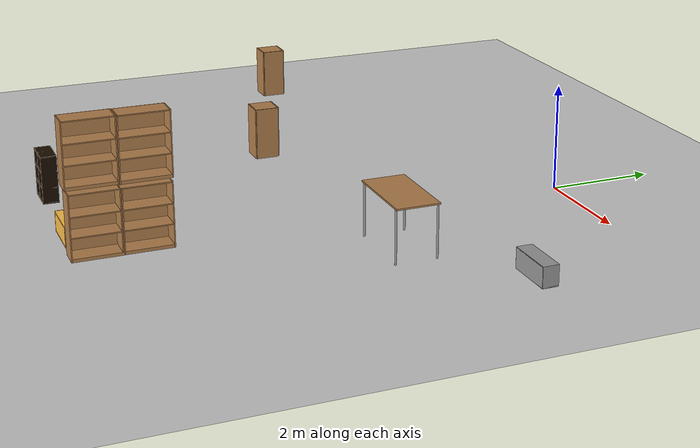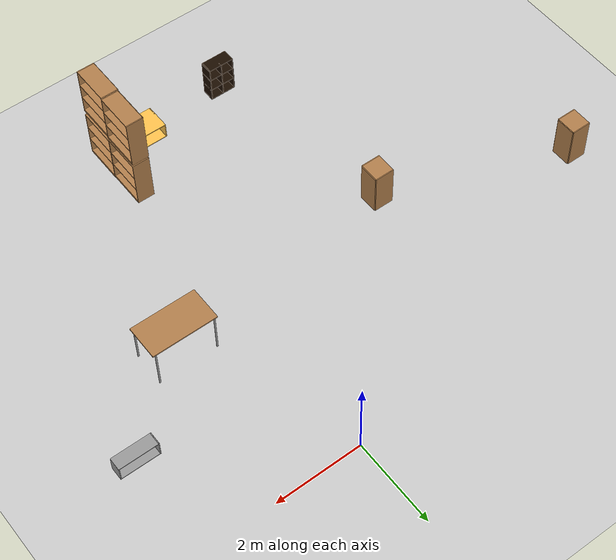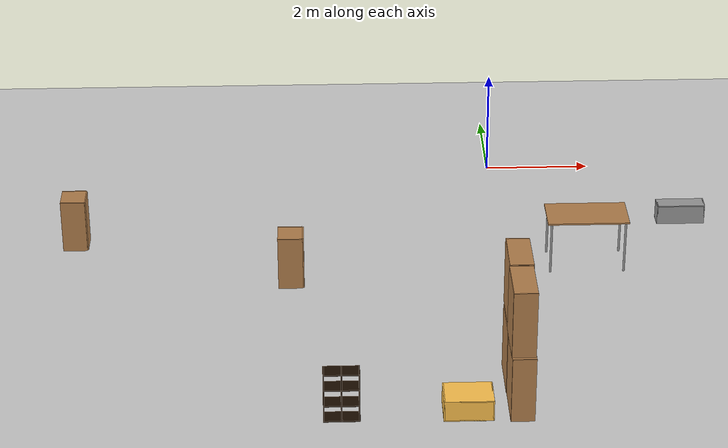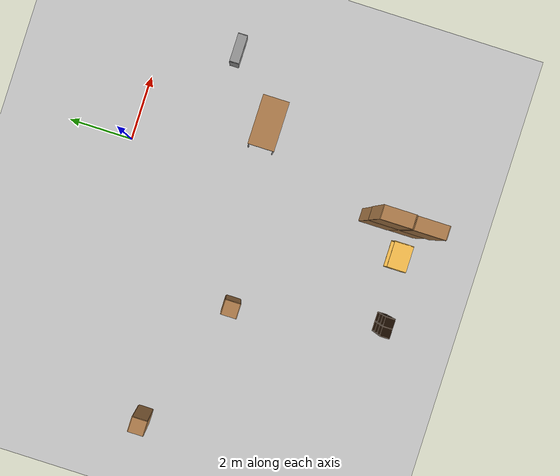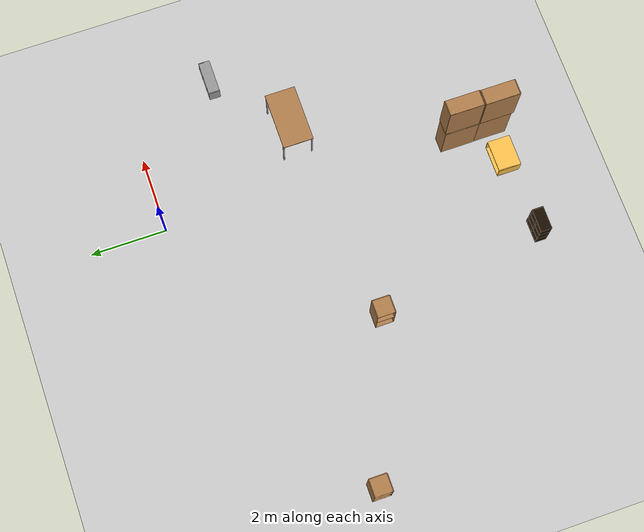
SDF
<sdf version="1.6">
 <world name="default">
  <model name="ground_plane">
   <static>1</static>
   <link name="link">
    <collision name="collision">
     <geometry><plane><normal>0 0 1</normal><size>100 100</size></plane></geometry>
     <surface>
      <contact><collide_bitmask>65535</collide_bitmask></contact>
      <friction><ode><mu>100</mu><mu2>50</mu2></ode></friction>
     </surface>
    </collision>
    <visual name="visual">
     <cast_shadows>0</cast_shadows>
     <geometry><plane><normal>0 0 1</normal><size>100 100</size></plane></geometry>
     <material>
      <script><uri>file://media/materials/scripts/gazebo.material</uri><name>Gazebo/Grey</name></script>
     </material>
    </visual>
   </link>
  </model>
  <model name="bookshelf_clone">
   <static>1</static>
   <link name="link">
    <inertial><mass>1</mass></inertial>
    <collision name="back">
     <pose>0 0.005 0.6 0 -0 0</pose>
     <geometry><box><size>0.9 0.01 1.2</size></box></geometry>
    </collision>
    <visual name="visual1">
     <pose>0 0.005 0.6 0 -0 0</pose>
     <geometry><box><size>0.9 0.01 1.2</size></box></geometry>
     <material>
      <script><uri>file://media/materials/scripts/gazebo.material</uri><name>Gazebo/Wood</name></script>
     </material>
    </visual>
    <collision name="left_side">
     <pose>0.45 -0.195 0.6 0 -0 0</pose>
     <geometry><box><size>0.02 0.4 1.2</size></box></geometry>
    </collision>
    <visual name="visual2">
     <pose>0.45 -0.195 0.6 0 -0 0</pose>
     <geometry><box><size>0.02 0.4 1.2</size></box></geometry>
     <material>
      <script><uri>file://media/materials/scripts/gazebo.material</uri><name>Gazebo/Wood</name></script>
     </material>
    </visual>
    <collision name="right_side">
     <pose>-0.45 -0.195 0.6 0 -0 0</pose>
     <geometry><box><size>0.02 0.4 1.2</size></box></geometry>
    </collision>
    <visual name="visual3">
     <pose>-0.45 -0.195 0.6 0 -0 0</pose>
     <geometry><box><size>0.02 0.4 1.2</size></box></geometry>
     <material>
      <script><uri>file://media/materials/scripts/gazebo.material</uri><name>Gazebo/Wood</name></script>
     </material>
    </visual>
    <collision name="bottom">
     <pose>0 -0.195 0.03 0 -0 0</pose>
     <geometry><box><size>0.88 0.4 0.06</size></box></geometry>
    </collision>
    <visual name="visual4">
     <pose>0 -0.195 0.03 0 -0 0</pose>
     <geometry><box><size>0.88 0.4 0.06</size></box></geometry>
     <material>
      <script><uri>file://media/materials/scripts/gazebo.material</uri><name>Gazebo/Wood</name></script>
     </material>
    </visual>
    <collision name="top">
     <pose>0 -0.195 1.19 0 -0 0</pose>
     <geometry><box><size>0.88 0.4 0.02</size></box></geometry>
    </collision>
    <visual name="visual5">
     <pose>0 -0.195 1.19 0 -0 0</pose>
     <geometry><box><size>0.88 0.4 0.02</size></box></geometry>
     <material>
      <script><uri>file://media/materials/scripts/gazebo.material</uri><name>Gazebo/Wood</name></script>
     </material>
    </visual>
    <collision name="low_shelf">
     <pose>0 -0.195 0.43 0 -0 0</pose>
     <geometry><box><size>0.88 0.4 0.02</size></box></geometry>
    </collision>
    <visual name="visual6">
     <pose>0 -0.195 0.43 0 -0 0</pose>
     <geometry><box><size>0.88 0.4 0.02</size></box></geometry>
     <material>
      <script><uri>file://media/materials/scripts/gazebo.material</uri><name>Gazebo/Wood</name></script>
     </material>
    </visual>
    <collision name="high_shelf">
     <pose>0 -0.195 0.8 0 -0 0</pose>
     <geometry><box><size>0.88 0.4 0.02</size></box></geometry>
    </collision>
    <visual name="visual7">
     <pose>0 -0.195 0.8 0 -0 0</pose>
     <geometry><box><size>0.88 0.4 0.02</size></box></geometry>
     <material>
      <script><uri>file://media/materials/scripts/gazebo.material</uri><name>Gazebo/Wood</name></script>
     </material>
    </visual>
   </link>
   <pose>-0.27446 -7.87472 0 0 -0 1.5707</pose>
  </model>
  <model name="bookshelf_clone_0">
   <static>1</static>
   <link name="link">
    <inertial><mass>1</mass></inertial>
    <collision name="back">
     <pose>0 0.005 0.6 0 -0 0</pose>
     <geometry><box><size>0.9 0.01 1.2</size></box></geometry>
    </collision>
    <visual name="visual1">
     <pose>0 0.005 0.6 0 -0 0</pose>
     <geometry><box><size>0.9 0.01 1.2</size></box></geometry>
     <material>
      <script><uri>file://media/materials/scripts/gazebo.material</uri><name>Gazebo/Wood</name></script>
     </material>
    </visual>
    <collision name="left_side">
     <pose>0.45 -0.195 0.6 0 -0 0</pose>
     <geometry><box><size>0.02 0.4 1.2</size></box></geometry>
    </collision>
    <visual name="visual2">
     <pose>0.45 -0.195 0.6 0 -0 0</pose>
     <geometry><box><size>0.02 0.4 1.2</size></box></geometry>
     <material>
      <script><uri>file://media/materials/scripts/gazebo.material</uri><name>Gazebo/Wood</name></script>
     </material>
    </visual>
    <collision name="right_side">
     <pose>-0.45 -0.195 0.6 0 -0 0</pose>
     <geometry><box><size>0.02 0.4 1.2</size></box></geometry>
    </collision>
    <visual name="visual3">
     <pose>-0.45 -0.195 0.6 0 -0 0</pose>
     <geometry><box><size>0.02 0.4 1.2</size></box></geometry>
     <material>
      <script><uri>file://media/materials/scripts/gazebo.material</uri><name>Gazebo/Wood</name></script>
     </material>
    </visual>
    <collision name="bottom">
     <pose>0 -0.195 0.03 0 -0 0</pose>
     <geometry><box><size>0.88 0.4 0.06</size></box></geometry>
    </collision>
    <visual name="visual4">
     <pose>0 -0.195 0.03 0 -0 0</pose>
     <geometry><box><size>0.88 0.4 0.06</size></box></geometry>
     <material>
      <script><uri>file://media/materials/scripts/gazebo.material</uri><name>Gazebo/Wood</name></script>
     </material>
    </visual>
    <collision name="top">
     <pose>0 -0.195 1.19 0 -0 0</pose>
     <geometry><box><size>0.88 0.4 0.02</size></box></geometry>
    </collision>
    <visual name="visual5">
     <pose>0 -0.195 1.19 0 -0 0</pose>
     <geometry><box><size>0.88 0.4 0.02</size></box></geometry>
     <material>
      <script><uri>file://media/materials/scripts/gazebo.material</uri><name>Gazebo/Wood</name></script>
     </material>
    </visual>
    <collision name="low_shelf">
     <pose>0 -0.195 0.43 0 -0 0</pose>
     <geometry><box><size>0.88 0.4 0.02</size></box></geometry>
    </collision>
    <visual name="visual6">
     <pose>0 -0.195 0.43 0 -0 0</pose>
     <geometry><box><size>0.88 0.4 0.02</size></box></geometry>
     <material>
      <script><uri>file://media/materials/scripts/gazebo.material</uri><name>Gazebo/Wood</name></script>
     </material>
    </visual>
    <collision name="high_shelf">
     <pose>0 -0.195 0.8 0 -0 0</pose>
     <geometry><box><size>0.88 0.4 0.02</size></box></geometry>
    </collision>
    <visual name="visual7">
     <pose>0 -0.195 0.8 0 -0 0</pose>
     <geometry><box><size>0.88 0.4 0.02</size></box></geometry>
     <material>
      <script><uri>file://media/materials/scripts/gazebo.material</uri><name>Gazebo/Wood</name></script>
     </material>
    </visual>
   </link>
   <pose>-0.266985 -8.74819 0 0 -0 1.5707</pose>
  </model>
  <model name="bookshelf_clone_0_clone">
   <static>1</static>
   <link name="link">
    <inertial><mass>1</mass></inertial>
    <collision name="back">
     <pose>0 0.005 0.6 0 -0 0</pose>
     <geometry><box><size>0.9 0.01 1.2</size></box></geometry>
    </collision>
    <visual name="visual1">
     <pose>0 0.005 0.6 0 -0 0</pose>
     <geometry><box><size>0.9 0.01 1.2</size></box></geometry>
     <material>
      <script><uri>file://media/materials/scripts/gazebo.material</uri><name>Gazebo/Wood</name></script>
     </material>
    </visual>
    <collision name="left_side">
     <pose>0.45 -0.195 0.6 0 -0 0</pose>
     <geometry><box><size>0.02 0.4 1.2</size></box></geometry>
    </collision>
    <visual name="visual2">
     <pose>0.45 -0.195 0.6 0 -0 0</pose>
     <geometry><box><size>0.02 0.4 1.2</size></box></geometry>
     <material>
      <script><uri>file://media/materials/scripts/gazebo.material</uri><name>Gazebo/Wood</name></script>
     </material>
    </visual>
    <collision name="right_side">
     <pose>-0.45 -0.195 0.6 0 -0 0</pose>
     <geometry><box><size>0.02 0.4 1.2</size></box></geometry>
    </collision>
    <visual name="visual3">
     <pose>-0.45 -0.195 0.6 0 -0 0</pose>
     <geometry><box><size>0.02 0.4 1.2</size></box></geometry>
     <material>
      <script><uri>file://media/materials/scripts/gazebo.material</uri><name>Gazebo/Wood</name></script>
     </material>
    </visual>
    <collision name="bottom">
     <pose>0 -0.195 0.03 0 -0 0</pose>
     <geometry><box><size>0.88 0.4 0.06</size></box></geometry>
    </collision>
    <visual name="visual4">
     <pose>0 -0.195 0.03 0 -0 0</pose>
     <geometry><box><size>0.88 0.4 0.06</size></box></geometry>
     <material>
      <script><uri>file://media/materials/scripts/gazebo.material</uri><name>Gazebo/Wood</name></script>
     </material>
    </visual>
    <collision name="top">
     <pose>0 -0.195 1.19 0 -0 0</pose>
     <geometry><box><size>0.88 0.4 0.02</size></box></geometry>
    </collision>
    <visual name="visual5">
     <pose>0 -0.195 1.19 0 -0 0</pose>
     <geometry><box><size>0.88 0.4 0.02</size></box></geometry>
     <material>
      <script><uri>file://media/materials/scripts/gazebo.material</uri><name>Gazebo/Wood</name></script>
     </material>
    </visual>
    <collision name="low_shelf">
     <pose>0 -0.195 0.43 0 -0 0</pose>
     <geometry><box><size>0.88 0.4 0.02</size></box></geometry>
    </collision>
    <visual name="visual6">
     <pose>0 -0.195 0.43 0 -0 0</pose>
     <geometry><box><size>0.88 0.4 0.02</size></box></geometry>
     <material>
      <script><uri>file://media/materials/scripts/gazebo.material</uri><name>Gazebo/Wood</name></script>
     </material>
    </visual>
    <collision name="high_shelf">
     <pose>0 -0.195 0.8 0 -0 0</pose>
     <geometry><box><size>0.88 0.4 0.02</size></box></geometry>
    </collision>
    <visual name="visual7">
     <pose>0 -0.195 0.8 0 -0 0</pose>
     <geometry><box><size>0.88 0.4 0.02</size></box></geometry>
     <material>
      <script><uri>file://media/materials/scripts/gazebo.material</uri><name>Gazebo/Wood</name></script>
     </material>
    </visual>
   </link>
   <pose>-0.272001 -7.8632 1.26747 0 -0 1.5707</pose>
  </model>
  <model name="table_0">
   <static>1</static>
   <link name="link">
    <collision name="surface">
     <pose>0 0 1 0 -0 0</pose>
     <geometry><box><size>1.5 0.8 0.03</size></box></geometry>
     <surface><friction><ode><mu>0.6</mu><mu2>0.6</mu2></ode></friction></surface>
    </collision>
    <visual name="visual1">
     <pose>0 0 1 0 -0 0</pose>
     <geometry><box><size>1.5 0.8 0.03</size></box></geometry>
     <material>
      <script><uri>file://media/materials/scripts/gazebo.material</uri><name>Gazebo/Wood</name></script>
     </material>
    </visual>
    <collision name="front_left_leg">
     <pose>0.68 0.38 0.5 0 -0 0</pose>
     <geometry><cylinder><radius>0.02</radius><length>1</length></cylinder></geometry>
    </collision>
    <visual name="front_left_leg">
     <pose>0.68 0.38 0.5 0 -0 0</pose>
     <geometry><cylinder><radius>0.02</radius><length>1</length></cylinder></geometry>
     <material>
      <script><uri>file://media/materials/scripts/gazebo.material</uri><name>Gazebo/Grey</name></script>
     </material>
    </visual>
    <collision name="front_right_leg">
     <pose>0.68 -0.38 0.5 0 -0 0</pose>
     <geometry><cylinder><radius>0.02</radius><length>1</length></cylinder></geometry>
    </collision>
    <visual name="front_right_leg">
     <pose>0.68 -0.38 0.5 0 -0 0</pose>
     <geometry><cylinder><radius>0.02</radius><length>1</length></cylinder></geometry>
     <material>
      <script><uri>file://media/materials/scripts/gazebo.material</uri><name>Gazebo/Grey</name></script>
     </material>
    </visual>
    <collision name="back_right_leg">
     <pose>-0.68 -0.38 0.5 0 -0 0</pose>
     <geometry><cylinder><radius>0.02</radius><length>1</length></cylinder></geometry>
    </collision>
    <visual name="back_right_leg">
     <pose>-0.68 -0.38 0.5 0 -0 0</pose>
     <geometry><cylinder><radius>0.02</radius><length>1</length></cylinder></geometry>
     <material>
      <script><uri>file://media/materials/scripts/gazebo.material</uri><name>Gazebo/Grey</name></script>
     </material>
    </visual>
    <collision name="back_left_leg">
     <pose>-0.68 0.38 0.5 0 -0 0</pose>
     <geometry><cylinder><radius>0.02</radius><length>1</length></cylinder></geometry>
    </collision>
    <visual name="back_left_leg">
     <pose>-0.68 0.38 0.5 0 -0 0</pose>
     <geometry><cylinder><radius>0.02</radius><length>1</length></cylinder></geometry>
     <material>
      <script><uri>file://media/materials/scripts/gazebo.material</uri><name>Gazebo/Grey</name></script>
     </material>
    </visual>
   </link>
   <pose>1.54215 -3.86728 0 0 -0 0</pose>
  </model>
  <model name="cabinet">
   <static>1</static>
   <link name="cabinet_bottom_plate">
    <inertial>
     <pose>0 0 -1 0 -0 0</pose>
     <inertia><ixx>2.05</ixx><ixy>0</ixy><ixz>0</ixz><iyy>2.05</iyy><iyz>0</iyz><izz>2.05</izz></inertia>
     <mass>25</mass>
    </inertial>
    <collision name="cabinet_bottom_plate_geom">
     <pose>0 0 0.01 0 -0 0</pose>
     <geometry><box><size>0.45 0.45 0.02</size></box></geometry>
    </collision>
    <visual name="cabinet_bottom_plate_geom_visual">
     <pose>0 0 0.01 0 -0 0</pose>
     <geometry><box><size>0.45 0.45 0.02</size></box></geometry>
     <material>
      <script><uri>file://media/materials/scripts/gazebo.material</uri><name>Gazebo/Wood</name></script>
     </material>
    </visual>
    <collision name="cabinet_bottom_plate_geom_cabinet_back_plate">
     <pose>0.235 0 0.51 0 -0 0</pose>
     <geometry><box><size>0.02 0.45 1.02</size></box></geometry>
    </collision>
    <visual name="cabinet_bottom_plate_geom_cabinet_back_plate_visual">
     <pose>0.235 0 0.51 0 -0 0</pose>
     <geometry><box><size>0.02 0.45 1.02</size></box></geometry>
     <material>
      <script><uri>file://media/materials/scripts/gazebo.material</uri><name>Gazebo/Wood</name></script>
     </material>
    </visual>
    <collision name="cabinet_bottom_plate_geom_cabinet_left_plate">
     <pose>0 0.235 0.51 0 -0 0</pose>
     <geometry><box><size>0.45 0.02 1.02</size></box></geometry>
    </collision>
    <visual name="cabinet_bottom_plate_geom_cabinet_left_plate_visual">
     <pose>0 0.235 0.51 0 -0 0</pose>
     <geometry><box><size>0.45 0.02 1.02</size></box></geometry>
     <material>
      <script><uri>file://media/materials/scripts/gazebo.material</uri><name>Gazebo/Wood</name></script>
     </material>
    </visual>
    <collision name="cabinet_bottom_plate_geom_cabinet_middle_plate">
     <pose>0 0 0.51 0 -0 0</pose>
     <geometry><box><size>0.45 0.45 0.02</size></box></geometry>
    </collision>
    <visual name="cabinet_bottom_plate_geom_cabinet_middle_plate_visual">
     <pose>0 0 0.51 0 -0 0</pose>
     <geometry><box><size>0.45 0.45 0.02</size></box></geometry>
     <material>
      <script><uri>file://media/materials/scripts/gazebo.material</uri><name>Gazebo/Wood</name></script>
     </material>
    </visual>
    <collision name="cabinet_bottom_plate_geom_cabinet_right_plate">
     <pose>0 -0.235 0.51 0 -0 0</pose>
     <geometry><box><size>0.45 0.02 1.02</size></box></geometry>
    </collision>
    <visual name="cabinet_bottom_plate_geom_cabinet_right_plate_visual">
     <pose>0 -0.235 0.51 0 -0 0</pose>
     <geometry><box><size>0.45 0.02 1.02</size></box></geometry>
     <material>
      <script><uri>file://media/materials/scripts/gazebo.material</uri><name>Gazebo/Wood</name></script>
     </material>
    </visual>
    <collision name="cabinet_bottom_plate_geom_cabinet_top_plate">
     <pose>0 0 1.01 0 -0 0</pose>
     <geometry><box><size>0.45 0.45 0.02</size></box></geometry>
    </collision>
    <visual name="cabinet_bottom_plate_geom_cabinet_top_plate_visual">
     <pose>0 0 1.01 0 -0 0</pose>
     <geometry><box><size>0.45 0.45 0.02</size></box></geometry>
     <material>
      <script><uri>file://media/materials/scripts/gazebo.material</uri><name>Gazebo/Wood</name></script>
     </material>
    </visual>
   </link>
   <pose>-7.9761 -2.91848 0 0 -0 0</pose>
  </model>
  <model name="Fridge_Cabinet_33x15">
   <link name="Wall_17">
    <pose>0 0 0.01 0 -0 0</pose>
    <inertial>
     <mass>4.8627</mass>
     <inertia><ixx>0.146</ixx><iyy>0.4318</iyy><izz>0.2861</izz><ixy>0</ixy><ixz>0</ixz><iyz>0</iyz></inertia>
    </inertial>
    <collision name="Wall_17_Collision"><geometry><box><size>0.84 0.6 0.02</size></box></geometry></collision>
    <visual name="Wall_17_Visual">
     <geometry><box><size>0.84 0.6 0.02</size></box></geometry>
     <material>
      <script><uri>file://media/materials/scripts/gazebo.material</uri><name>Gazebo/Grey</name></script>
      <ambient>1 0.764706 0.305882 1</ambient>
     </material>
    </visual>
   </link>
   <joint name="17_21" type="fixed">
    <pose>0.42 0 0 0 -0 0</pose>
    <parent>Wall_21</parent>
    <child>Wall_17</child>
    <axis>
     <xyz>1 0 0</xyz>
     <use_parent_model_frame>0</use_parent_model_frame>
     <limit><lower>-1e+16</lower><upper>1e+16</upper></limit>
    </axis>
   </joint>
   <joint name="17_19" type="fixed">
    <pose>-0.42 0 0 0 -0 0</pose>
    <parent>Wall_19</parent>
    <child>Wall_17</child>
    <axis>
     <xyz>1 0 0</xyz>
     <use_parent_model_frame>0</use_parent_model_frame>
     <limit><lower>-1e+16</lower><upper>1e+16</upper></limit>
    </axis>
   </joint>
   <joint name="17_25" type="fixed">
    <pose>0 -0.3 0 0 -0 0</pose>
    <parent>Wall_25</parent>
    <child>Wall_17</child>
    <axis>
     <xyz>0 1 0</xyz>
     <use_parent_model_frame>0</use_parent_model_frame>
     <limit><lower>-1e+16</lower><upper>1e+16</upper></limit>
    </axis>
   </joint>
   <link name="Wall_19">
    <pose>-0.41 0 0.192 0 -0 0</pose>
    <inertial>
     <mass>2.223</mass>
     <inertia><ixx>0.0668</ixx><iyy>0.094</iyy><izz>0.0274</izz><ixy>0</ixy><ixz>0</ixz><iyz>0</iyz></inertia>
    </inertial>
    <collision name="Wall_19_Collision"><geometry><box><size>0.02 0.6 0.384</size></box></geometry></collision>
    <visual name="Wall_19_Visual">
     <geometry><box><size>0.02 0.6 0.384</size></box></geometry>
     <material>
      <script><uri>file://media/materials/scripts/gazebo.material</uri><name>Gazebo/Grey</name></script>
      <ambient>1 0.764706 0.305882 1</ambient>
     </material>
    </visual>
   </link>
   <link name="Wall_21">
    <pose>0.41 0 0.192 0 -0 0</pose>
    <inertial>
     <mass>2.223</mass>
     <inertia><ixx>0.0668</ixx><iyy>0.094</iyy><izz>0.0274</izz><ixy>0</ixy><ixz>0</ixz><iyz>0</iyz></inertia>
    </inertial>
    <collision name="Wall_21_Collision"><geometry><box><size>0.02 0.6 0.384</size></box></geometry></collision>
    <visual name="Wall_21_Visual">
     <geometry><box><size>0.02 0.6 0.384</size></box></geometry>
     <material>
      <script><uri>file://media/materials/scripts/gazebo.material</uri><name>Gazebo/Grey</name></script>
      <ambient>1 0.764706 0.305882 1</ambient>
     </material>
    </visual>
   </link>
   <link name="Wall_23">
    <pose>0 0 0.374 0 -0 0</pose>
    <inertial>
     <mass>4.8627</mass>
     <inertia><ixx>0.146</ixx><iyy>0.4318</iyy><izz>0.2861</izz><ixy>0</ixy><ixz>0</ixz><iyz>0</iyz></inertia>
    </inertial>
    <collision name="Wall_23_Collision"><geometry><box><size>0.84 0.6 0.02</size></box></geometry></collision>
    <visual name="Wall_23_Visual">
     <geometry><box><size>0.84 0.6 0.02</size></box></geometry>
     <material>
      <script><uri>file://media/materials/scripts/gazebo.material</uri><name>Gazebo/Grey</name></script>
      <ambient>1 0.764706 0.305882 1</ambient>
     </material>
    </visual>
   </link>
   <joint name="23_21" type="fixed">
    <pose>0.42 0 0 0 -0 0</pose>
    <parent>Wall_21</parent>
    <child>Wall_23</child>
    <axis>
     <xyz>0 0 1</xyz>
     <use_parent_model_frame>0</use_parent_model_frame>
     <limit><lower>-1e+16</lower><upper>1e+16</upper></limit>
    </axis>
   </joint>
   <joint name="23_19" type="fixed">
    <pose>-0.42 0 0 0 -0 0</pose>
    <parent>Wall_19</parent>
    <child>Wall_23</child>
    <axis>
     <xyz>0 0 1</xyz>
     <use_parent_model_frame>0</use_parent_model_frame>
     <limit><lower>-1e+16</lower><upper>1e+16</upper></limit>
    </axis>
   </joint>
   <joint name="23_25" type="fixed">
    <pose>0 -0.3 0 0 -0 0</pose>
    <parent>Wall_25</parent>
    <child>Wall_23</child>
    <axis>
     <xyz>0 0 1</xyz>
     <use_parent_model_frame>0</use_parent_model_frame>
     <limit><lower>-1e+16</lower><upper>1e+16</upper></limit>
    </axis>
   </joint>
   <link name="Wall_25">
    <pose>0 -0.29 0.19 0 -0 0</pose>
    <inertial>
     <mass>3.0651</mass>
     <inertia><ixx>0.037</ixx><iyy>0.1786</iyy><izz>0.2154</izz><ixy>0</ixy><ixz>0</ixz><iyz>0</iyz></inertia>
    </inertial>
    <collision name="Wall_25_Collision"><geometry><box><size>0.836 0.02 0.38</size></box></geometry></collision>
    <visual name="Wall_25_Visual">
     <geometry><box><size>0.836 0.02 0.38</size></box></geometry>
     <material>
      <script><uri>file://media/materials/scripts/gazebo.material</uri><name>Gazebo/Grey</name></script>
      <ambient>1 0.764706 0.305882 1</ambient>
     </material>
    </visual>
   </link>
   <joint name="25_21" type="fixed">
    <pose>0.42 0 0 0 -0 0</pose>
    <parent>Wall_21</parent>
    <child>Wall_25</child>
    <axis>
     <xyz>0 1 0</xyz>
     <use_parent_model_frame>0</use_parent_model_frame>
     <limit><lower>-1e+16</lower><upper>1e+16</upper></limit>
    </axis>
   </joint>
   <joint name="25_19" type="fixed">
    <pose>-0.42 0 0 0 -0 0</pose>
    <parent>Wall_19</parent>
    <child>Wall_25</child>
    <axis>
     <xyz>0 1 0</xyz>
     <use_parent_model_frame>0</use_parent_model_frame>
     <limit><lower>-1e+16</lower><upper>1e+16</upper></limit>
    </axis>
   </joint>
   <static>1</static>
   <pose>-0.963479 -8.86948 0 0 -0 0</pose>
  </model>
  <model name="6_Cube_StorageE">
   <link name="Wall_0">
    <pose>0 0 0.01 0 -0 0</pose>
    <inertial>
     <mass>1.6201</mass>
     <inertia><ixx>0.0119</ixx><iyy>0.0631</iyy><izz>0.0513</izz><ixy>0</ixy><ixz>0</ixz><iyz>0</iyz></inertia>
    </inertial>
    <collision name="Wall_0_Collision"><geometry><box><size>0.616 0.296 0.02</size></box></geometry></collision>
    <visual name="Wall_0_Visual">
     <geometry><box><size>0.616 0.296 0.02</size></box></geometry>
     <material>
      <script><uri>file://media/materials/scripts/gazebo.material</uri><name>Gazebo/Grey</name></script>
      <ambient>0.105882 0.0509804 0 1</ambient>
     </material>
    </visual>
   </link>
   <joint name="0_2" type="fixed">
    <pose>-0.308 0 0 0 -0 0</pose>
    <parent>Wall_2</parent>
    <child>Wall_0</child>
    <axis>
     <xyz>1 0 0</xyz>
     <use_parent_model_frame>0</use_parent_model_frame>
     <limit><lower>-1e+16</lower><upper>1e+16</upper></limit>
    </axis>
   </joint>
   <joint name="0_12" type="fixed">
    <parent>Wall_12</parent>
    <child>Wall_0</child>
    <axis>
     <xyz>0 0 1</xyz>
     <use_parent_model_frame>0</use_parent_model_frame>
     <limit><lower>-1e+16</lower><upper>1e+16</upper></limit>
    </axis>
   </joint>
   <joint name="0_4" type="fixed">
    <pose>0.308 0 0 0 -0 0</pose>
    <parent>Wall_4</parent>
    <child>Wall_0</child>
    <axis>
     <xyz>1 0 0</xyz>
     <use_parent_model_frame>0</use_parent_model_frame>
     <limit><lower>-1e+16</lower><upper>1e+16</upper></limit>
    </axis>
   </joint>
   <link name="Wall_10">
    <pose>0 0 0.61 0 -0 0</pose>
    <inertial>
     <mass>1.6201</mass>
     <inertia><ixx>0.0119</ixx><iyy>0.0631</iyy><izz>0.0513</izz><ixy>0</ixy><ixz>0</ixz><iyz>0</iyz></inertia>
    </inertial>
    <collision name="Wall_10_Collision"><geometry><box><size>0.616 0.296 0.02</size></box></geometry></collision>
    <visual name="Wall_10_Visual">
     <geometry><box><size>0.616 0.296 0.02</size></box></geometry>
     <material>
      <script><uri>file://media/materials/scripts/gazebo.material</uri><name>Gazebo/Grey</name></script>
      <ambient>0.105882 0.0509804 0 1</ambient>
     </material>
    </visual>
   </link>
   <joint name="10_2" type="fixed">
    <pose>-0.308 0 0 0 -0 0</pose>
    <parent>Wall_2</parent>
    <child>Wall_10</child>
    <axis>
     <xyz>1 0 0</xyz>
     <use_parent_model_frame>0</use_parent_model_frame>
     <limit><lower>-1e+16</lower><upper>1e+16</upper></limit>
    </axis>
   </joint>
   <joint name="10_12" type="fixed">
    <parent>Wall_12</parent>
    <child>Wall_10</child>
    <axis>
     <xyz>0 0 1</xyz>
     <use_parent_model_frame>0</use_parent_model_frame>
     <limit><lower>-1e+16</lower><upper>1e+16</upper></limit>
    </axis>
   </joint>
   <joint name="10_4" type="fixed">
    <pose>0.308 0 0 0 -0 0</pose>
    <parent>Wall_4</parent>
    <child>Wall_10</child>
    <axis>
     <xyz>1 0 0</xyz>
     <use_parent_model_frame>0</use_parent_model_frame>
     <limit><lower>-1e+16</lower><upper>1e+16</upper></limit>
    </axis>
   </joint>
   <link name="Wall_12">
    <pose>0 0 0.4575 0 -0 0</pose>
    <inertial>
     <mass>2.4065</mass>
     <inertia><ixx>0.0177</ixx><iyy>0.1855</iyy><izz>0.168</izz><ixy>0</ixy><ixz>0</ixz><iyz>0</iyz></inertia>
    </inertial>
    <collision name="Wall_12_Collision"><geometry><box><size>0.02 0.296 0.915</size></box></geometry></collision>
    <visual name="Wall_12_Visual">
     <geometry><box><size>0.02 0.296 0.915</size></box></geometry>
     <material>
      <script><uri>file://media/materials/scripts/gazebo.material</uri><name>Gazebo/Grey</name></script>
      <ambient>0.105882 0.0509804 0 1</ambient>
     </material>
    </visual>
   </link>
   <link name="Wall_2">
    <pose>-0.298 0 0.4575 0 -0 0</pose>
    <inertial>
     <mass>2.4065</mass>
     <inertia><ixx>0.0177</ixx><iyy>0.1855</iyy><izz>0.168</izz><ixy>0</ixy><ixz>0</ixz><iyz>0</iyz></inertia>
    </inertial>
    <collision name="Wall_2_Collision"><geometry><box><size>0.02 0.296 0.915</size></box></geometry></collision>
    <visual name="Wall_2_Visual">
     <geometry><box><size>0.02 0.296 0.915</size></box></geometry>
     <material>
      <script><uri>file://media/materials/scripts/gazebo.material</uri><name>Gazebo/Grey</name></script>
      <ambient>0.105882 0.0509804 0 1</ambient>
     </material>
    </visual>
   </link>
   <link name="Wall_4">
    <pose>0.298 0 0.4575 0 -0 0</pose>
    <inertial>
     <mass>2.4065</mass>
     <inertia><ixx>0.0177</ixx><iyy>0.1855</iyy><izz>0.168</izz><ixy>0</ixy><ixz>0</ixz><iyz>0</iyz></inertia>
    </inertial>
    <collision name="Wall_4_Collision"><geometry><box><size>0.02 0.296 0.915</size></box></geometry></collision>
    <visual name="Wall_4_Visual">
     <geometry><box><size>0.02 0.296 0.915</size></box></geometry>
     <material>
      <script><uri>file://media/materials/scripts/gazebo.material</uri><name>Gazebo/Grey</name></script>
      <ambient>0.105882 0.0509804 0 1</ambient>
     </material>
    </visual>
   </link>
   <link name="Wall_6">
    <pose>0 0 0.905 0 -0 0</pose>
    <inertial>
     <mass>1.6201</mass>
     <inertia><ixx>0.0119</ixx><iyy>0.0631</iyy><izz>0.0513</izz><ixy>0</ixy><ixz>0</ixz><iyz>0</iyz></inertia>
    </inertial>
    <collision name="Wall_6_Collision"><geometry><box><size>0.616 0.296 0.02</size></box></geometry></collision>
    <visual name="Wall_6_Visual">
     <geometry><box><size>0.616 0.296 0.02</size></box></geometry>
     <material>
      <script><uri>file://media/materials/scripts/gazebo.material</uri><name>Gazebo/Grey</name></script>
      <ambient>0.105882 0.0509804 0 1</ambient>
     </material>
    </visual>
   </link>
   <joint name="6_2" type="fixed">
    <pose>-0.308 0 0 0 -0 0</pose>
    <parent>Wall_2</parent>
    <child>Wall_6</child>
    <axis>
     <xyz>2 0 0</xyz>
     <use_parent_model_frame>0</use_parent_model_frame>
     <limit><lower>-1e+16</lower><upper>1e+16</upper></limit>
    </axis>
   </joint>
   <joint name="6_12" type="fixed">
    <parent>Wall_12</parent>
    <child>Wall_6</child>
    <axis>
     <xyz>0 0 1</xyz>
     <use_parent_model_frame>0</use_parent_model_frame>
     <limit><lower>-1e+16</lower><upper>1e+16</upper></limit>
    </axis>
   </joint>
   <joint name="6_4" type="fixed">
    <pose>0.308 0 0 0 -0 0</pose>
    <parent>Wall_4</parent>
    <child>Wall_6</child>
    <axis>
     <xyz>1 0 0</xyz>
     <use_parent_model_frame>0</use_parent_model_frame>
     <limit><lower>-1e+16</lower><upper>1e+16</upper></limit>
    </axis>
   </joint>
   <link name="Wall_8">
    <pose>0 0 0.305 0 -0 0</pose>
    <inertial>
     <mass>1.6201</mass>
     <inertia><ixx>0.0119</ixx><iyy>0.0631</iyy><izz>0.0513</izz><ixy>0</ixy><ixz>0</ixz><iyz>0</iyz></inertia>
    </inertial>
    <collision name="Wall_8_Collision"><geometry><box><size>0.616 0.296 0.02</size></box></geometry></collision>
    <visual name="Wall_8_Visual">
     <geometry><box><size>0.616 0.296 0.02</size></box></geometry>
     <material>
      <script><uri>file://media/materials/scripts/gazebo.material</uri><name>Gazebo/Grey</name></script>
      <ambient>0.105882 0.0509804 0 1</ambient>
     </material>
    </visual>
   </link>
   <joint name="8_2" type="fixed">
    <pose>-0.308 0 0 0 -0 0</pose>
    <parent>Wall_2</parent>
    <child>Wall_8</child>
    <axis>
     <xyz>1 0 0</xyz>
     <use_parent_model_frame>0</use_parent_model_frame>
     <limit><lower>-1e+16</lower><upper>1e+16</upper></limit>
    </axis>
   </joint>
   <joint name="8_12" type="fixed">
    <parent>Wall_12</parent>
    <child>Wall_8</child>
    <axis>
     <xyz>0 0 1</xyz>
     <use_parent_model_frame>0</use_parent_model_frame>
     <limit><lower>-1e+16</lower><upper>1e+16</upper></limit>
    </axis>
   </joint>
   <joint name="8_4" type="fixed">
    <pose>0.308 0 0 0 -0 0</pose>
    <parent>Wall_4</parent>
    <child>Wall_8</child>
    <axis>
     <xyz>1 0 0</xyz>
     <use_parent_model_frame>0</use_parent_model_frame>
     <limit><lower>-1e+16</lower><upper>1e+16</upper></limit>
    </axis>
   </joint>
   <static>1</static>
   <pose>-3.06823 -8.97793 0 0 -0 0</pose>
  </model>
  <model name="Wall_Cabinet_36x15W_0">
   <link name="Wall_0">
    <pose>0 0 0.01 0 -0 0</pose>
    <inertial>
     <mass>1.9796</mass>
     <inertia><ixx>0.0145</ixx><iyy>0.1511</iyy><izz>0.1367</izz><ixy>0</ixy><ixz>0</ixz><iyz>0</iyz></inertia>
    </inertial>
    <collision name="Wall_0_Collision"><geometry><box><size>0.91 0.296 0.02</size></box></geometry></collision>
    <visual name="Wall_0_Visual">
     <geometry><box><size>0.91 0.296 0.02</size></box></geometry>
     <material>
      <script><uri>file://media/materials/scripts/gazebo.material</uri><name>Gazebo/Grey</name></script>
      <ambient>1 1 1 1</ambient>
     </material>
    </visual>
   </link>
   <joint name="0_2" type="fixed">
    <pose>-0.455 0 0 0 -0 0</pose>
    <parent>Wall_2</parent>
    <child>Wall_0</child>
    <axis>
     <xyz>0 0 1</xyz>
     <use_parent_model_frame>0</use_parent_model_frame>
     <limit><lower>-1e+16</lower><upper>1e+16</upper></limit>
    </axis>
   </joint>
   <joint name="0_4" type="fixed">
    <pose>0.455 0 0 0 -0 0</pose>
    <parent>Wall_4</parent>
    <child>Wall_0</child>
    <axis>
     <xyz>0 0 1</xyz>
     <use_parent_model_frame>0</use_parent_model_frame>
     <limit><lower>-1e+16</lower><upper>1e+16</upper></limit>
    </axis>
   </joint>
   <joint name="0_8" type="fixed">
    <pose>0 -0.148 0 0 -0 0</pose>
    <parent>Wall_8</parent>
    <child>Wall_0</child>
    <axis>
     <xyz>0 0 1</xyz>
     <use_parent_model_frame>0</use_parent_model_frame>
     <limit><lower>-1e+16</lower><upper>1e+16</upper></limit>
    </axis>
   </joint>
   <link name="Wall_2">
    <pose>-0.445 0 0.192 0 -0 0</pose>
    <inertial>
     <mass>0.8353</mass>
     <inertia><ixx>0.0061</ixx><iyy>0.0164</iyy><izz>0.0103</izz><ixy>0</ixy><ixz>0</ixz><iyz>0</iyz></inertia>
    </inertial>
    <collision name="Wall_2_Collision"><geometry><box><size>0.02 0.296 0.384</size></box></geometry></collision>
    <visual name="Wall_2_Visual">
     <geometry><box><size>0.02 0.296 0.384</size></box></geometry>
     <material>
      <script><uri>file://media/materials/scripts/gazebo.material</uri><name>Gazebo/Grey</name></script>
      <ambient>1 1 1 1</ambient>
     </material>
    </visual>
   </link>
   <link name="Wall_4">
    <pose>0.445 0 0.192 0 -0 0</pose>
    <inertial>
     <mass>0.8353</mass>
     <inertia><ixx>0.0061</ixx><iyy>0.0164</iyy><izz>0.0103</izz><ixy>0</ixy><ixz>0</ixz><iyz>0</iyz></inertia>
    </inertial>
    <collision name="Wall_4_Collision"><geometry><box><size>0.02 0.296 0.384</size></box></geometry></collision>
    <visual name="Wall_4_Visual">
     <geometry><box><size>0.02 0.296 0.384</size></box></geometry>
     <material>
      <script><uri>file://media/materials/scripts/gazebo.material</uri><name>Gazebo/Grey</name></script>
      <ambient>1 1 1 1</ambient>
     </material>
    </visual>
   </link>
   <link name="Wall_6">
    <pose>0 0 0.374 0 -0 0</pose>
    <inertial>
     <mass>1.9796</mass>
     <inertia><ixx>0.0145</ixx><iyy>0.1511</iyy><izz>0.1367</izz><ixy>0</ixy><ixz>0</ixz><iyz>0</iyz></inertia>
    </inertial>
    <collision name="Wall_6_Collision"><geometry><box><size>0.91 0.296 0.02</size></box></geometry></collision>
    <visual name="Wall_6_Visual">
     <geometry><box><size>0.91 0.296 0.02</size></box></geometry>
     <material>
      <script><uri>file://media/materials/scripts/gazebo.material</uri><name>Gazebo/Grey</name></script>
      <ambient>1 1 1 1</ambient>
     </material>
    </visual>
   </link>
   <joint name="6_2" type="fixed">
    <pose>-0.455 0 0 0 -0 0</pose>
    <parent>Wall_2</parent>
    <child>Wall_6</child>
    <axis>
     <xyz>0 0 1</xyz>
     <use_parent_model_frame>0</use_parent_model_frame>
     <limit><lower>-1e+16</lower><upper>1e+16</upper></limit>
    </axis>
   </joint>
   <joint name="6_4" type="fixed">
    <pose>0.455 0 0 0 -0 0</pose>
    <parent>Wall_4</parent>
    <child>Wall_6</child>
    <axis>
     <xyz>0 0 1</xyz>
     <use_parent_model_frame>0</use_parent_model_frame>
     <limit><lower>-1e+16</lower><upper>1e+16</upper></limit>
    </axis>
   </joint>
   <joint name="6_8" type="fixed">
    <pose>0 -0.148 0 0 -0 0</pose>
    <parent>Wall_8</parent>
    <child>Wall_6</child>
    <axis>
     <xyz>0 0 1</xyz>
     <use_parent_model_frame>0</use_parent_model_frame>
     <limit><lower>-1e+16</lower><upper>1e+16</upper></limit>
    </axis>
   </joint>
   <link name="Wall_8">
    <pose>0 -0.138 0.19 0 -0 0</pose>
    <inertial>
     <mass>2.5302</mass>
     <inertia><ixx>0.0305</ixx><iyy>0.1732</iyy><izz>0.2035</izz><ixy>0</ixy><ixz>0</ixz><iyz>0</iyz></inertia>
    </inertial>
    <collision name="Wall_8_Collision"><geometry><box><size>0.906 0.02 0.38</size></box></geometry></collision>
    <visual name="Wall_8_Visual">
     <geometry><box><size>0.906 0.02 0.38</size></box></geometry>
     <material>
      <script><uri>file://media/materials/scripts/gazebo.material</uri><name>Gazebo/Grey</name></script>
      <ambient>1 1 1 1</ambient>
     </material>
    </visual>
   </link>
   <joint name="8_2" type="fixed">
    <pose>-0.453 0 0 0 -0 0</pose>
    <parent>Wall_2</parent>
    <child>Wall_8</child>
    <axis>
     <xyz>0 1 0</xyz>
     <use_parent_model_frame>0</use_parent_model_frame>
     <limit><lower>-1e+16</lower><upper>1e+16</upper></limit>
    </axis>
   </joint>
   <joint name="8_4" type="fixed">
    <pose>0.453 0 0 0 -0 0</pose>
    <parent>Wall_4</parent>
    <child>Wall_8</child>
    <axis>
     <xyz>0 1 0</xyz>
     <use_parent_model_frame>0</use_parent_model_frame>
     <limit><lower>-1e+16</lower><upper>1e+16</upper></limit>
    </axis>
   </joint>
   <static>1</static>
   <pose>3.53938 -2.31748 0 0 -0 0</pose>
  </model>
  <model name="cabinet_0">
   <static>1</static>
   <link name="cabinet_bottom_plate">
    <inertial>
     <pose>0 0 -1 0 -0 0</pose>
     <inertia><ixx>2.05</ixx><ixy>0</ixy><ixz>0</ixz><iyy>2.05</iyy><iyz>0</iyz><izz>2.05</izz></inertia>
     <mass>25</mass>
    </inertial>
    <collision name="cabinet_bottom_plate_geom">
     <pose>0 0 0.01 0 -0 0</pose>
     <geometry><box><size>0.45 0.45 0.02</size></box></geometry>
    </collision>
    <visual name="cabinet_bottom_plate_geom_visual">
     <pose>0 0 0.01 0 -0 0</pose>
     <geometry><box><size>0.45 0.45 0.02</size></box></geometry>
     <material>
      <script><uri>file://media/materials/scripts/gazebo.material</uri><name>Gazebo/Wood</name></script>
     </material>
    </visual>
    <collision name="cabinet_bottom_plate_geom_cabinet_back_plate">
     <pose>0.235 0 0.51 0 -0 0</pose>
     <geometry><box><size>0.02 0.45 1.02</size></box></geometry>
    </collision>
    <visual name="cabinet_bottom_plate_geom_cabinet_back_plate_visual">
     <pose>0.235 0 0.51 0 -0 0</pose>
     <geometry><box><size>0.02 0.45 1.02</size></box></geometry>
     <material>
      <script><uri>file://media/materials/scripts/gazebo.material</uri><name>Gazebo/Wood</name></script>
     </material>
    </visual>
    <collision name="cabinet_bottom_plate_geom_cabinet_left_plate">
     <pose>0 0.235 0.51 0 -0 0</pose>
     <geometry><box><size>0.45 0.02 1.02</size></box></geometry>
    </collision>
    <visual name="cabinet_bottom_plate_geom_cabinet_left_plate_visual">
     <pose>0 0.235 0.51 0 -0 0</pose>
     <geometry><box><size>0.45 0.02 1.02</size></box></geometry>
     <material>
      <script><uri>file://media/materials/scripts/gazebo.material</uri><name>Gazebo/Wood</name></script>
     </material>
    </visual>
    <collision name="cabinet_bottom_plate_geom_cabinet_middle_plate">
     <pose>0 0 0.51 0 -0 0</pose>
     <geometry><box><size>0.45 0.45 0.02</size></box></geometry>
    </collision>
    <visual name="cabinet_bottom_plate_geom_cabinet_middle_plate_visual">
     <pose>0 0 0.51 0 -0 0</pose>
     <geometry><box><size>0.45 0.45 0.02</size></box></geometry>
     <material>
      <script><uri>file://media/materials/scripts/gazebo.material</uri><name>Gazebo/Wood</name></script>
     </material>
    </visual>
    <collision name="cabinet_bottom_plate_geom_cabinet_right_plate">
     <pose>0 -0.235 0.51 0 -0 0</pose>
     <geometry><box><size>0.45 0.02 1.02</size></box></geometry>
    </collision>
    <visual name="cabinet_bottom_plate_geom_cabinet_right_plate_visual">
     <pose>0 -0.235 0.51 0 -0 0</pose>
     <geometry><box><size>0.45 0.02 1.02</size></box></geometry>
     <material>
      <script><uri>file://media/materials/scripts/gazebo.material</uri><name>Gazebo/Wood</name></script>
     </material>
    </visual>
    <collision name="cabinet_bottom_plate_geom_cabinet_top_plate">
     <pose>0 0 1.01 0 -0 0</pose>
     <geometry><box><size>0.45 0.45 0.02</size></box></geometry>
    </collision>
    <visual name="cabinet_bottom_plate_geom_cabinet_top_plate_visual">
     <pose>0 0 1.01 0 -0 0</pose>
     <geometry><box><size>0.45 0.45 0.02</size></box></geometry>
     <material>
      <script><uri>file://media/materials/scripts/gazebo.material</uri><name>Gazebo/Wood</name></script>
     </material>
    </visual>
   </link>
   <pose>-3.92437 -4.4557 0 0 -0 0</pose>
  </model>
  <model name="bookshelf_clone_0_clone_clone">
   <static>1</static>
   <link name="link">
    <inertial><mass>1</mass></inertial>
    <collision name="back">
     <pose>0 0.005 0.6 0 -0 0</pose>
     <geometry><box><size>0.9 0.01 1.2</size></box></geometry>
    </collision>
    <visual name="visual1">
     <pose>0 0.005 0.6 0 -0 0</pose>
     <geometry><box><size>0.9 0.01 1.2</size></box></geometry>
     <material>
      <script><uri>file://media/materials/scripts/gazebo.material</uri><name>Gazebo/Wood</name></script>
     </material>
    </visual>
    <collision name="left_side">
     <pose>0.45 -0.195 0.6 0 -0 0</pose>
     <geometry><box><size>0.02 0.4 1.2</size></box></geometry>
    </collision>
    <visual name="visual2">
     <pose>0.45 -0.195 0.6 0 -0 0</pose>
     <geometry><box><size>0.02 0.4 1.2</size></box></geometry>
     <material>
      <script><uri>file://media/materials/scripts/gazebo.material</uri><name>Gazebo/Wood</name></script>
     </material>
    </visual>
    <collision name="right_side">
     <pose>-0.45 -0.195 0.6 0 -0 0</pose>
     <geometry><box><size>0.02 0.4 1.2</size></box></geometry>
    </collision>
    <visual name="visual3">
     <pose>-0.45 -0.195 0.6 0 -0 0</pose>
     <geometry><box><size>0.02 0.4 1.2</size></box></geometry>
     <material>
      <script><uri>file://media/materials/scripts/gazebo.material</uri><name>Gazebo/Wood</name></script>
     </material>
    </visual>
    <collision name="bottom">
     <pose>0 -0.195 0.03 0 -0 0</pose>
     <geometry><box><size>0.88 0.4 0.06</size></box></geometry>
    </collision>
    <visual name="visual4">
     <pose>0 -0.195 0.03 0 -0 0</pose>
     <geometry><box><size>0.88 0.4 0.06</size></box></geometry>
     <material>
      <script><uri>file://media/materials/scripts/gazebo.material</uri><name>Gazebo/Wood</name></script>
     </material>
    </visual>
    <collision name="top">
     <pose>0 -0.195 1.19 0 -0 0</pose>
     <geometry><box><size>0.88 0.4 0.02</size></box></geometry>
    </collision>
    <visual name="visual5">
     <pose>0 -0.195 1.19 0 -0 0</pose>
     <geometry><box><size>0.88 0.4 0.02</size></box></geometry>
     <material>
      <script><uri>file://media/materials/scripts/gazebo.material</uri><name>Gazebo/Wood</name></script>
     </material>
    </visual>
    <collision name="low_shelf">
     <pose>0 -0.195 0.43 0 -0 0</pose>
     <geometry><box><size>0.88 0.4 0.02</size></box></geometry>
    </collision>
    <visual name="visual6">
     <pose>0 -0.195 0.43 0 -0 0</pose>
     <geometry><box><size>0.88 0.4 0.02</size></box></geometry>
     <material>
      <script><uri>file://media/materials/scripts/gazebo.material</uri><name>Gazebo/Wood</name></script>
     </material>
    </visual>
    <collision name="high_shelf">
     <pose>0 -0.195 0.8 0 -0 0</pose>
     <geometry><box><size>0.88 0.4 0.02</size></box></geometry>
    </collision>
    <visual name="visual7">
     <pose>0 -0.195 0.8 0 -0 0</pose>
     <geometry><box><size>0.88 0.4 0.02</size></box></geometry>
     <material>
      <script><uri>file://media/materials/scripts/gazebo.material</uri><name>Gazebo/Wood</name></script>
     </material>
    </visual>
   </link>
   <pose>-0.287394 -8.7892 1.26747 0 -0 1.5707</pose>
  </model>
 </world>
</sdf>
